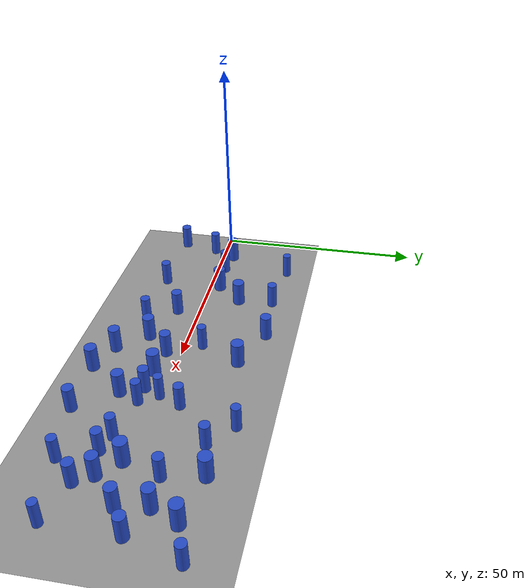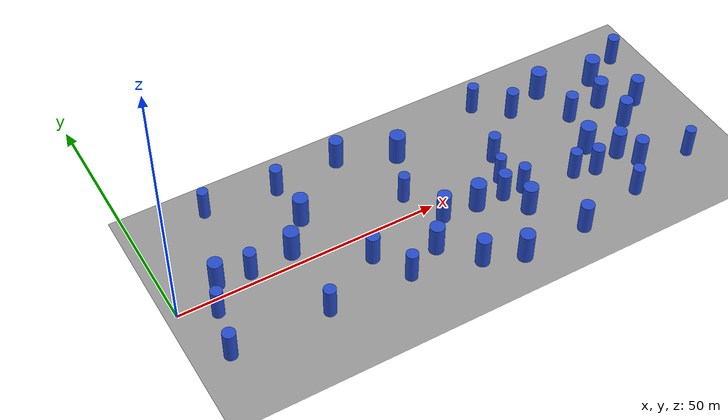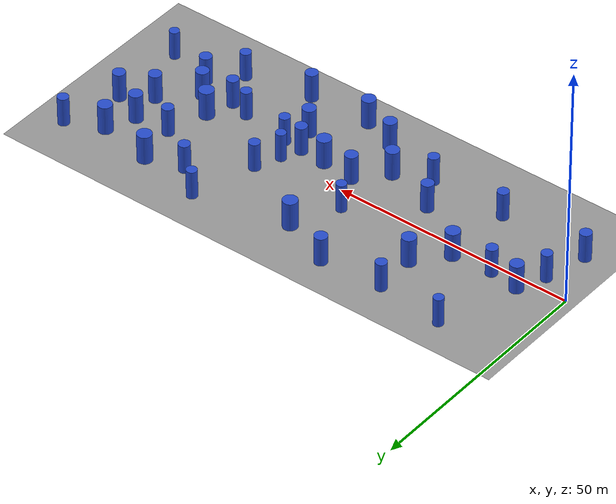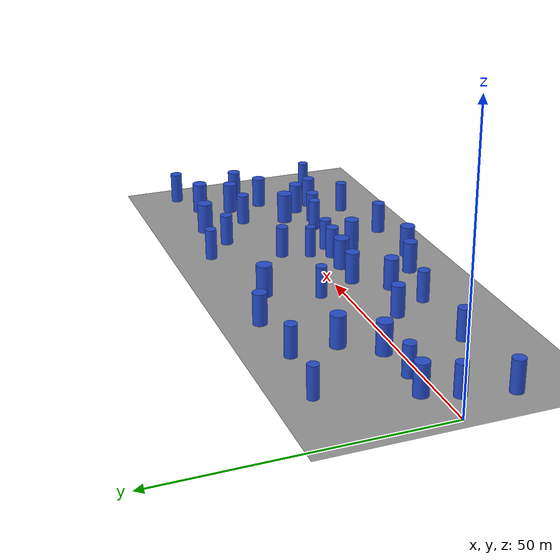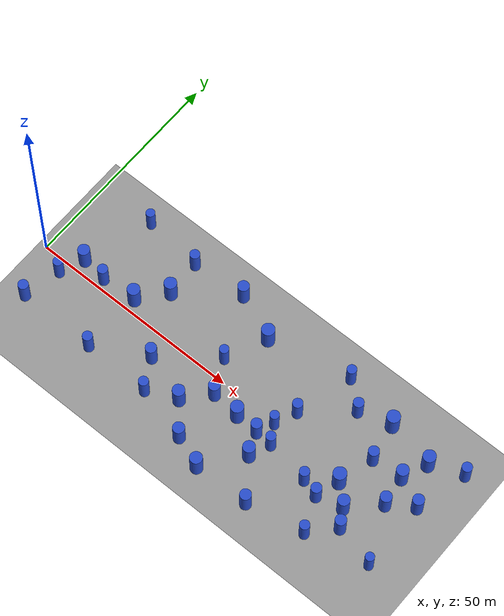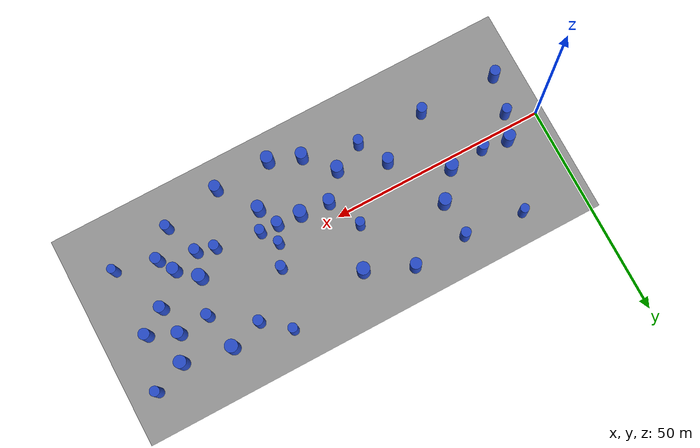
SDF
<sdf version="1.7">
 <world name="default">
  <plugin name="disable_physics" filename="libdisable_physics.so"/>
  <plugin name="gazebo_ros_state" filename="libgazebo_ros_state.so">
   <ros>
    <namespace>/plug</namespace>
    <argument>model_states:=model_states_plug</argument>
    <argument>link_states:=link_states_plug</argument>
   </ros>
   <update_rate>100.0</update_rate>
  </plugin>
  <light name="sun" type="directional">
   <pose>0 0 10 0 -0 0</pose>
   <diffuse>0.8 0.8 0.8 1</diffuse>
   <specular>0.2 0.2 0.2 1</specular>
   <attenuation>
    <range>1000</range>
    <constant>0.9</constant>
    <linear>0.01</linear>
    <quadratic>0.001</quadratic>
   </attenuation>
   <direction>-0.5 0.1 -0.9</direction>
   <spot><inner_angle>0</inner_angle><outer_angle>0</outer_angle><falloff>0</falloff></spot>
  </light>
  <gravity>0 0 -9.8</gravity>
  <magnetic_field>6e-06 2.3e-05 -4.2e-05</magnetic_field>
  <atmosphere type="adiabatic"/>
  <physics type="ode">
   <max_step_size>0.001</max_step_size>
   <real_time_factor>1</real_time_factor>
   <real_time_update_rate>1000</real_time_update_rate>
  </physics>
  <scene><ambient>0.4 0.4 0.4 1</ambient><background>0.7 0.7 0.7 1</background><shadows>1</shadows></scene>
  <audio><device>default</device></audio>
  <spherical_coordinates>
   <surface_model>EARTH_WGS84</surface_model>
   <latitude_deg>0</latitude_deg>
   <longitude_deg>0</longitude_deg>
   <elevation>0</elevation>
   <heading_deg>0</heading_deg>
  </spherical_coordinates>
  <model name="ground_plane_map">
   <static>1</static>
   <link name="link">
    <collision name="collision">
     <geometry><plane><normal>0 0 1</normal><size>110 50</size></plane></geometry>
     <surface>
      <contact><collide_without_contact>1</collide_without_contact></contact>
      <friction><ode><mu>100</mu><mu2>50</mu2></ode></friction>
     </surface>
    </collision>
    <visual name="visual">
     <cast_shadows>0</cast_shadows>
     <geometry><plane><normal>0 0 1</normal><size>110 50</size></plane></geometry>
     <material>
      <script><uri>file://media/materials/scripts/gazebo.material</uri><name>Gazebo/Grey</name></script>
     </material>
    </visual>
   </link>
   <pose>53 0 0 0 -0 0</pose>
  </model>
  <model name="0">
   <static>1</static>
   <link name="link">
    <inertial>
     <mass>2</mass>
     <inertia><ixx>6.95079</ixx><ixy>0</ixy><ixz>0</ixz><iyy>6.95079</iyy><iyz>0</iyz><izz>1.90158</izz></inertia>
    </inertial>
    <collision name="collision">
     <geometry><cylinder><length>6</length><radius>1.37898</radius></cylinder></geometry>
     <surface><contact><collide_without_contact>1</collide_without_contact></contact></surface>
    </collision>
    <visual name="visual">
     <geometry><cylinder><length>6</length><radius>1.37898</radius></cylinder></geometry>
     <material>
      <script><uri>file://media/materials/scripts/gazebo.material</uri><name>Gazebo/Blue</name></script>
     </material>
    </visual>
    <gravity>0</gravity>
   </link>
   <pose>45.2762 -8.97843 3 0 -0 0</pose>
  </model>
  <model name="1">
   <static>1</static>
   <link name="link">
    <inertial>
     <mass>2</mass>
     <inertia><ixx>6.72296</ixx><ixy>0</ixy><ixz>0</ixz><iyy>6.72296</iyy><iyz>0</iyz><izz>1.44593</izz></inertia>
    </inertial>
    <collision name="collision">
     <geometry><cylinder><length>6</length><radius>1.20247</radius></cylinder></geometry>
     <surface><contact><collide_without_contact>1</collide_without_contact></contact></surface>
    </collision>
    <visual name="visual">
     <geometry><cylinder><length>6</length><radius>1.20247</radius></cylinder></geometry>
     <material>
      <script><uri>file://media/materials/scripts/gazebo.material</uri><name>Gazebo/Blue</name></script>
     </material>
    </visual>
    <gravity>0</gravity>
   </link>
   <pose>80.6973 -7.39447 3 0 -0 0</pose>
  </model>
  <model name="2">
   <static>1</static>
   <link name="link">
    <inertial>
     <mass>2</mass>
     <inertia><ixx>6.83423</ixx><ixy>0</ixy><ixz>0</ixz><iyy>6.83423</iyy><iyz>0</iyz><izz>1.66847</izz></inertia>
    </inertial>
    <collision name="collision">
     <geometry><cylinder><length>6</length><radius>1.29169</radius></cylinder></geometry>
     <surface><contact><collide_without_contact>1</collide_without_contact></contact></surface>
    </collision>
    <visual name="visual">
     <geometry><cylinder><length>6</length><radius>1.29169</radius></cylinder></geometry>
     <material>
      <script><uri>file://media/materials/scripts/gazebo.material</uri><name>Gazebo/Blue</name></script>
     </material>
    </visual>
    <gravity>0</gravity>
   </link>
   <pose>92.757 0.175366 3 0 -0 0</pose>
  </model>
  <model name="3">
   <static>1</static>
   <link name="link">
    <inertial>
     <mass>2</mass>
     <inertia><ixx>6.94931</ixx><ixy>0</ixy><ixz>0</ixz><iyy>6.94931</iyy><iyz>0</iyz><izz>1.89861</izz></inertia>
    </inertial>
    <collision name="collision">
     <geometry><cylinder><length>6</length><radius>1.3779</radius></cylinder></geometry>
     <surface><contact><collide_without_contact>1</collide_without_contact></contact></surface>
    </collision>
    <visual name="visual">
     <geometry><cylinder><length>6</length><radius>1.3779</radius></cylinder></geometry>
     <material>
      <script><uri>file://media/materials/scripts/gazebo.material</uri><name>Gazebo/Blue</name></script>
     </material>
    </visual>
    <gravity>0</gravity>
   </link>
   <pose>64.5107 -9.29219 3 0 -0 0</pose>
  </model>
  <model name="4">
   <static>1</static>
   <link name="link">
    <inertial>
     <mass>2</mass>
     <inertia><ixx>7.11213</ixx><ixy>0</ixy><ixz>0</ixz><iyy>7.11213</iyy><iyz>0</iyz><izz>2.22425</izz></inertia>
    </inertial>
    <collision name="collision">
     <geometry><cylinder><length>6</length><radius>1.49139</radius></cylinder></geometry>
     <surface><contact><collide_without_contact>1</collide_without_contact></contact></surface>
    </collision>
    <visual name="visual">
     <geometry><cylinder><length>6</length><radius>1.49139</radius></cylinder></geometry>
     <material>
      <script><uri>file://media/materials/scripts/gazebo.material</uri><name>Gazebo/Blue</name></script>
     </material>
    </visual>
    <gravity>0</gravity>
   </link>
   <pose>83.0964 14.8871 3 0 -0 0</pose>
  </model>
  <model name="5">
   <static>1</static>
   <link name="link">
    <inertial>
     <mass>2</mass>
     <inertia><ixx>6.9315</ixx><ixy>0</ixy><ixz>0</ixz><iyy>6.9315</iyy><iyz>0</iyz><izz>1.863</izz></inertia>
    </inertial>
    <collision name="collision">
     <geometry><cylinder><length>6</length><radius>1.36492</radius></cylinder></geometry>
     <surface><contact><collide_without_contact>1</collide_without_contact></contact></surface>
    </collision>
    <visual name="visual">
     <geometry><cylinder><length>6</length><radius>1.36492</radius></cylinder></geometry>
     <material>
      <script><uri>file://media/materials/scripts/gazebo.material</uri><name>Gazebo/Blue</name></script>
     </material>
    </visual>
    <gravity>0</gravity>
   </link>
   <pose>91.7951 6.85711 3 0 -0 0</pose>
  </model>
  <model name="6">
   <static>1</static>
   <link name="link">
    <inertial>
     <mass>2</mass>
     <inertia><ixx>6.55162</ixx><ixy>0</ixy><ixz>0</ixz><iyy>6.55162</iyy><iyz>0</iyz><izz>1.10324</izz></inertia>
    </inertial>
    <collision name="collision">
     <geometry><cylinder><length>6</length><radius>1.05035</radius></cylinder></geometry>
     <surface><contact><collide_without_contact>1</collide_without_contact></contact></surface>
    </collision>
    <visual name="visual">
     <geometry><cylinder><length>6</length><radius>1.05035</radius></cylinder></geometry>
     <material>
      <script><uri>file://media/materials/scripts/gazebo.material</uri><name>Gazebo/Blue</name></script>
     </material>
    </visual>
    <gravity>0</gravity>
   </link>
   <pose>46.5555 4.20254 3 0 -0 0</pose>
  </model>
  <model name="7">
   <static>1</static>
   <link name="link">
    <inertial>
     <mass>2</mass>
     <inertia><ixx>7.10009</ixx><ixy>0</ixy><ixz>0</ixz><iyy>7.10009</iyy><iyz>0</iyz><izz>2.20019</izz></inertia>
    </inertial>
    <collision name="collision">
     <geometry><cylinder><length>6</length><radius>1.4833</radius></cylinder></geometry>
     <surface><contact><collide_without_contact>1</collide_without_contact></contact></surface>
    </collision>
    <visual name="visual">
     <geometry><cylinder><length>6</length><radius>1.4833</radius></cylinder></geometry>
     <material>
      <script><uri>file://media/materials/scripts/gazebo.material</uri><name>Gazebo/Blue</name></script>
     </material>
    </visual>
    <gravity>0</gravity>
   </link>
   <pose>50.7692 13.5287 3 0 -0 0</pose>
  </model>
  <model name="8">
   <static>1</static>
   <link name="link">
    <inertial>
     <mass>2</mass>
     <inertia><ixx>6.98352</ixx><ixy>0</ixy><ixz>0</ixz><iyy>6.98352</iyy><iyz>0</iyz><izz>1.96705</izz></inertia>
    </inertial>
    <collision name="collision">
     <geometry><cylinder><length>6</length><radius>1.40251</radius></cylinder></geometry>
     <surface><contact><collide_without_contact>1</collide_without_contact></contact></surface>
    </collision>
    <visual name="visual">
     <geometry><cylinder><length>6</length><radius>1.40251</radius></cylinder></geometry>
     <material>
      <script><uri>file://media/materials/scripts/gazebo.material</uri><name>Gazebo/Blue</name></script>
     </material>
    </visual>
    <gravity>0</gravity>
   </link>
   <pose>57.7333 -18.0752 3 0 -0 0</pose>
  </model>
  <model name="9">
   <static>1</static>
   <link name="link">
    <inertial>
     <mass>2</mass>
     <inertia><ixx>6.71929</ixx><ixy>0</ixy><ixz>0</ixz><iyy>6.71929</iyy><iyz>0</iyz><izz>1.43859</izz></inertia>
    </inertial>
    <collision name="collision">
     <geometry><cylinder><length>6</length><radius>1.19941</radius></cylinder></geometry>
     <surface><contact><collide_without_contact>1</collide_without_contact></contact></surface>
    </collision>
    <visual name="visual">
     <geometry><cylinder><length>6</length><radius>1.19941</radius></cylinder></geometry>
     <material>
      <script><uri>file://media/materials/scripts/gazebo.material</uri><name>Gazebo/Blue</name></script>
     </material>
    </visual>
    <gravity>0</gravity>
   </link>
   <pose>84.7053 6.32276 3 0 -0 0</pose>
  </model>
  <model name="10">
   <static>1</static>
   <link name="link">
    <inertial>
     <mass>2</mass>
     <inertia><ixx>6.77724</ixx><ixy>0</ixy><ixz>0</ixz><iyy>6.77724</iyy><iyz>0</iyz><izz>1.55448</izz></inertia>
    </inertial>
    <collision name="collision">
     <geometry><cylinder><length>6</length><radius>1.24679</radius></cylinder></geometry>
     <surface><contact><collide_without_contact>1</collide_without_contact></contact></surface>
    </collision>
    <visual name="visual">
     <geometry><cylinder><length>6</length><radius>1.24679</radius></cylinder></geometry>
     <material>
      <script><uri>file://media/materials/scripts/gazebo.material</uri><name>Gazebo/Blue</name></script>
     </material>
    </visual>
    <gravity>0</gravity>
   </link>
   <pose>88.8436 -9.60499 3 0 -0 0</pose>
  </model>
  <model name="11">
   <static>1</static>
   <link name="link">
    <inertial>
     <mass>2</mass>
     <inertia><ixx>7.02995</ixx><ixy>0</ixy><ixz>0</ixz><iyy>7.02995</iyy><iyz>0</iyz><izz>2.0599</izz></inertia>
    </inertial>
    <collision name="collision">
     <geometry><cylinder><length>6</length><radius>1.43524</radius></cylinder></geometry>
     <surface><contact><collide_without_contact>1</collide_without_contact></contact></surface>
    </collision>
    <visual name="visual">
     <geometry><cylinder><length>6</length><radius>1.43524</radius></cylinder></geometry>
     <material>
      <script><uri>file://media/materials/scripts/gazebo.material</uri><name>Gazebo/Blue</name></script>
     </material>
    </visual>
    <gravity>0</gravity>
   </link>
   <pose>22.9935 2.50664 3 0 -0 0</pose>
  </model>
  <model name="12">
   <static>1</static>
   <link name="link">
    <inertial>
     <mass>2</mass>
     <inertia><ixx>7.10079</ixx><ixy>0</ixy><ixz>0</ixz><iyy>7.10079</iyy><iyz>0</iyz><izz>2.20157</izz></inertia>
    </inertial>
    <collision name="collision">
     <geometry><cylinder><length>6</length><radius>1.48377</radius></cylinder></geometry>
     <surface><contact><collide_without_contact>1</collide_without_contact></contact></surface>
    </collision>
    <visual name="visual">
     <geometry><cylinder><length>6</length><radius>1.48377</radius></cylinder></geometry>
     <material>
      <script><uri>file://media/materials/scripts/gazebo.material</uri><name>Gazebo/Blue</name></script>
     </material>
    </visual>
    <gravity>0</gravity>
   </link>
   <pose>82.4183 -1.92681 3 0 -0 0</pose>
  </model>
  <model name="13">
   <static>1</static>
   <link name="link">
    <inertial>
     <mass>2</mass>
     <inertia><ixx>6.67283</ixx><ixy>0</ixy><ixz>0</ixz><iyy>6.67283</iyy><iyz>0</iyz><izz>1.34566</izz></inertia>
    </inertial>
    <collision name="collision">
     <geometry><cylinder><length>6</length><radius>1.16003</radius></cylinder></geometry>
     <surface><contact><collide_without_contact>1</collide_without_contact></contact></surface>
    </collision>
    <visual name="visual">
     <geometry><cylinder><length>6</length><radius>1.16003</radius></cylinder></geometry>
     <material>
      <script><uri>file://media/materials/scripts/gazebo.material</uri><name>Gazebo/Blue</name></script>
     </material>
    </visual>
    <gravity>0</gravity>
   </link>
   <pose>14.8128 1.93175 3 0 -0 0</pose>
  </model>
  <model name="14">
   <static>1</static>
   <link name="link">
    <inertial>
     <mass>2</mass>
     <inertia><ixx>6.81118</ixx><ixy>0</ixy><ixz>0</ixz><iyy>6.81118</iyy><iyz>0</iyz><izz>1.62236</izz></inertia>
    </inertial>
    <collision name="collision">
     <geometry><cylinder><length>6</length><radius>1.27372</radius></cylinder></geometry>
     <surface><contact><collide_without_contact>1</collide_without_contact></contact></surface>
    </collision>
    <visual name="visual">
     <geometry><cylinder><length>6</length><radius>1.27372</radius></cylinder></geometry>
     <material>
      <script><uri>file://media/materials/scripts/gazebo.material</uri><name>Gazebo/Blue</name></script>
     </material>
    </visual>
    <gravity>0</gravity>
   </link>
   <pose>98.2023 3.86457 3 0 -0 0</pose>
  </model>
  <model name="15">
   <static>1</static>
   <link name="link">
    <inertial>
     <mass>2</mass>
     <inertia><ixx>6.74725</ixx><ixy>0</ixy><ixz>0</ixz><iyy>6.74725</iyy><iyz>0</iyz><izz>1.49449</izz></inertia>
    </inertial>
    <collision name="collision">
     <geometry><cylinder><length>6</length><radius>1.22249</radius></cylinder></geometry>
     <surface><contact><collide_without_contact>1</collide_without_contact></contact></surface>
    </collision>
    <visual name="visual">
     <geometry><cylinder><length>6</length><radius>1.22249</radius></cylinder></geometry>
     <material>
      <script><uri>file://media/materials/scripts/gazebo.material</uri><name>Gazebo/Blue</name></script>
     </material>
    </visual>
    <gravity>0</gravity>
   </link>
   <pose>62.3933 -4.32254 3 0 -0 0</pose>
  </model>
  <model name="16">
   <static>1</static>
   <link name="link">
    <inertial>
     <mass>2</mass>
     <inertia><ixx>6.6557</ixx><ixy>0</ixy><ixz>0</ixz><iyy>6.6557</iyy><iyz>0</iyz><izz>1.3114</izz></inertia>
    </inertial>
    <collision name="collision">
     <geometry><cylinder><length>6</length><radius>1.14516</radius></cylinder></geometry>
     <surface><contact><collide_without_contact>1</collide_without_contact></contact></surface>
    </collision>
    <visual name="visual">
     <geometry><cylinder><length>6</length><radius>1.14516</radius></cylinder></geometry>
     <material>
      <script><uri>file://media/materials/scripts/gazebo.material</uri><name>Gazebo/Blue</name></script>
     </material>
    </visual>
    <gravity>0</gravity>
   </link>
   <pose>22.6505 -11.8133 3 0 -0 0</pose>
  </model>
  <model name="17">
   <static>1</static>
   <link name="link">
    <inertial>
     <mass>2</mass>
     <inertia><ixx>6.88223</ixx><ixy>0</ixy><ixz>0</ixz><iyy>6.88223</iyy><iyz>0</iyz><izz>1.76446</izz></inertia>
    </inertial>
    <collision name="collision">
     <geometry><cylinder><length>6</length><radius>1.32833</radius></cylinder></geometry>
     <surface><contact><collide_without_contact>1</collide_without_contact></contact></surface>
    </collision>
    <visual name="visual">
     <geometry><cylinder><length>6</length><radius>1.32833</radius></cylinder></geometry>
     <material>
      <script><uri>file://media/materials/scripts/gazebo.material</uri><name>Gazebo/Blue</name></script>
     </material>
    </visual>
    <gravity>0</gravity>
   </link>
   <pose>50.7154 -15.3173 3 0 -0 0</pose>
  </model>
  <model name="18">
   <static>1</static>
   <link name="link">
    <inertial>
     <mass>2</mass>
     <inertia><ixx>7.03448</ixx><ixy>0</ixy><ixz>0</ixz><iyy>7.03448</iyy><iyz>0</iyz><izz>2.06895</izz></inertia>
    </inertial>
    <collision name="collision">
     <geometry><cylinder><length>6</length><radius>1.43839</radius></cylinder></geometry>
     <surface><contact><collide_without_contact>1</collide_without_contact></contact></surface>
    </collision>
    <visual name="visual">
     <geometry><cylinder><length>6</length><radius>1.43839</radius></cylinder></geometry>
     <material>
      <script><uri>file://media/materials/scripts/gazebo.material</uri><name>Gazebo/Blue</name></script>
     </material>
    </visual>
    <gravity>0</gravity>
   </link>
   <pose>94.1201 12.7132 3 0 -0 0</pose>
  </model>
  <model name="19">
   <static>1</static>
   <link name="link">
    <inertial>
     <mass>2</mass>
     <inertia><ixx>7.06805</ixx><ixy>0</ixy><ixz>0</ixz><iyy>7.06805</iyy><iyz>0</iyz><izz>2.1361</izz></inertia>
    </inertial>
    <collision name="collision">
     <geometry><cylinder><length>6</length><radius>1.46154</radius></cylinder></geometry>
     <surface><contact><collide_without_contact>1</collide_without_contact></contact></surface>
    </collision>
    <visual name="visual">
     <geometry><cylinder><length>6</length><radius>1.46154</radius></cylinder></geometry>
     <material>
      <script><uri>file://media/materials/scripts/gazebo.material</uri><name>Gazebo/Blue</name></script>
     </material>
    </visual>
    <gravity>0</gravity>
   </link>
   <pose>56.9413 -4.03041 3 0 -0 0</pose>
  </model>
  <model name="20">
   <static>1</static>
   <link name="link">
    <inertial>
     <mass>2</mass>
     <inertia><ixx>6.64731</ixx><ixy>0</ixy><ixz>0</ixz><iyy>6.64731</iyy><iyz>0</iyz><izz>1.29463</izz></inertia>
    </inertial>
    <collision name="collision">
     <geometry><cylinder><length>6</length><radius>1.13782</radius></cylinder></geometry>
     <surface><contact><collide_without_contact>1</collide_without_contact></contact></surface>
    </collision>
    <visual name="visual">
     <geometry><cylinder><length>6</length><radius>1.13782</radius></cylinder></geometry>
     <material>
      <script><uri>file://media/materials/scripts/gazebo.material</uri><name>Gazebo/Blue</name></script>
     </material>
    </visual>
    <gravity>0</gravity>
   </link>
   <pose>101.496 15.7288 3 0 -0 0</pose>
  </model>
  <model name="21">
   <static>1</static>
   <link name="link">
    <inertial>
     <mass>2</mass>
     <inertia><ixx>6.54203</ixx><ixy>0</ixy><ixz>0</ixz><iyy>6.54203</iyy><iyz>0</iyz><izz>1.08407</izz></inertia>
    </inertial>
    <collision name="collision">
     <geometry><cylinder><length>6</length><radius>1.04119</radius></cylinder></geometry>
     <surface><contact><collide_without_contact>1</collide_without_contact></contact></surface>
    </collision>
    <visual name="visual">
     <geometry><cylinder><length>6</length><radius>1.04119</radius></cylinder></geometry>
     <material>
      <script><uri>file://media/materials/scripts/gazebo.material</uri><name>Gazebo/Blue</name></script>
     </material>
    </visual>
    <gravity>0</gravity>
   </link>
   <pose>64.0435 -0.514004 3 0 -0 0</pose>
  </model>
  <model name="22">
   <static>1</static>
   <link name="link">
    <inertial>
     <mass>2</mass>
     <inertia><ixx>7.01181</ixx><ixy>0</ixy><ixz>0</ixz><iyy>7.01181</iyy><iyz>0</iyz><izz>2.02362</izz></inertia>
    </inertial>
    <collision name="collision">
     <geometry><cylinder><length>6</length><radius>1.42254</radius></cylinder></geometry>
     <surface><contact><collide_without_contact>1</collide_without_contact></contact></surface>
    </collision>
    <visual name="visual">
     <geometry><cylinder><length>6</length><radius>1.42254</radius></cylinder></geometry>
     <material>
      <script><uri>file://media/materials/scripts/gazebo.material</uri><name>Gazebo/Blue</name></script>
     </material>
    </visual>
    <gravity>0</gravity>
   </link>
   <pose>28.0346 8.60096 3 0 -0 0</pose>
  </model>
  <model name="23">
   <static>1</static>
   <link name="link">
    <inertial>
     <mass>2</mass>
     <inertia><ixx>6.61631</ixx><ixy>0</ixy><ixz>0</ixz><iyy>6.61631</iyy><iyz>0</iyz><izz>1.23261</izz></inertia>
    </inertial>
    <collision name="collision">
     <geometry><cylinder><length>6</length><radius>1.11023</radius></cylinder></geometry>
     <surface><contact><collide_without_contact>1</collide_without_contact></contact></surface>
    </collision>
    <visual name="visual">
     <geometry><cylinder><length>6</length><radius>1.11023</radius></cylinder></geometry>
     <material>
      <script><uri>file://media/materials/scripts/gazebo.material</uri><name>Gazebo/Blue</name></script>
     </material>
    </visual>
    <gravity>0</gravity>
   </link>
   <pose>83.8898 -15.0889 3 0 -0 0</pose>
  </model>
  <model name="24">
   <static>1</static>
   <link name="link">
    <inertial>
     <mass>2</mass>
     <inertia><ixx>6.90968</ixx><ixy>0</ixy><ixz>0</ixz><iyy>6.90968</iyy><iyz>0</iyz><izz>1.81936</izz></inertia>
    </inertial>
    <collision name="collision">
     <geometry><cylinder><length>6</length><radius>1.34884</radius></cylinder></geometry>
     <surface><contact><collide_without_contact>1</collide_without_contact></contact></surface>
    </collision>
    <visual name="visual">
     <geometry><cylinder><length>6</length><radius>1.34884</radius></cylinder></geometry>
     <material>
      <script><uri>file://media/materials/scripts/gazebo.material</uri><name>Gazebo/Blue</name></script>
     </material>
    </visual>
    <gravity>0</gravity>
   </link>
   <pose>8.75022 2.75537 3 0 -0 0</pose>
  </model>
  <model name="25">
   <static>1</static>
   <link name="link">
    <inertial>
     <mass>2</mass>
     <inertia><ixx>6.80277</ixx><ixy>0</ixy><ixz>0</ixz><iyy>6.80277</iyy><iyz>0</iyz><izz>1.60554</izz></inertia>
    </inertial>
    <collision name="collision">
     <geometry><cylinder><length>6</length><radius>1.2671</radius></cylinder></geometry>
     <surface><contact><collide_without_contact>1</collide_without_contact></contact></surface>
    </collision>
    <visual name="visual">
     <geometry><cylinder><length>6</length><radius>1.2671</radius></cylinder></geometry>
     <material>
      <script><uri>file://media/materials/scripts/gazebo.material</uri><name>Gazebo/Blue</name></script>
     </material>
    </visual>
    <gravity>0</gravity>
   </link>
   <pose>70.6013 -17.7327 3 0 -0 0</pose>
  </model>
  <model name="26">
   <static>1</static>
   <link name="link">
    <inertial>
     <mass>2</mass>
     <inertia><ixx>6.84912</ixx><ixy>0</ixy><ixz>0</ixz><iyy>6.84912</iyy><iyz>0</iyz><izz>1.69825</izz></inertia>
    </inertial>
    <collision name="collision">
     <geometry><cylinder><length>6</length><radius>1.30317</radius></cylinder></geometry>
     <surface><contact><collide_without_contact>1</collide_without_contact></contact></surface>
    </collision>
    <visual name="visual">
     <geometry><cylinder><length>6</length><radius>1.30317</radius></cylinder></geometry>
     <material>
      <script><uri>file://media/materials/scripts/gazebo.material</uri><name>Gazebo/Blue</name></script>
     </material>
    </visual>
    <gravity>0</gravity>
   </link>
   <pose>40.3525 17.9683 3 0 -0 0</pose>
  </model>
  <model name="27">
   <static>1</static>
   <link name="link">
    <inertial>
     <mass>2</mass>
     <inertia><ixx>6.51088</ixx><ixy>0</ixy><ixz>0</ixz><iyy>6.51088</iyy><iyz>0</iyz><izz>1.02175</izz></inertia>
    </inertial>
    <collision name="collision">
     <geometry><cylinder><length>6</length><radius>1.01082</radius></cylinder></geometry>
     <surface><contact><collide_without_contact>1</collide_without_contact></contact></surface>
    </collision>
    <visual name="visual">
     <geometry><cylinder><length>6</length><radius>1.01082</radius></cylinder></geometry>
     <material>
      <script><uri>file://media/materials/scripts/gazebo.material</uri><name>Gazebo/Blue</name></script>
     </material>
    </visual>
    <gravity>0</gravity>
   </link>
   <pose>98.1711 -11.9642 3 0 -0 0</pose>
  </model>
  <model name="28">
   <static>1</static>
   <link name="link">
    <inertial>
     <mass>2</mass>
     <inertia><ixx>6.61083</ixx><ixy>0</ixy><ixz>0</ixz><iyy>6.61083</iyy><iyz>0</iyz><izz>1.22166</izz></inertia>
    </inertial>
    <collision name="collision">
     <geometry><cylinder><length>6</length><radius>1.10529</radius></cylinder></geometry>
     <surface><contact><collide_without_contact>1</collide_without_contact></contact></surface>
    </collision>
    <visual name="visual">
     <geometry><cylinder><length>6</length><radius>1.10529</radius></cylinder></geometry>
     <material>
      <script><uri>file://media/materials/scripts/gazebo.material</uri><name>Gazebo/Blue</name></script>
     </material>
    </visual>
    <gravity>0</gravity>
   </link>
   <pose>6.33318 -2.81082 3 0 -0 0</pose>
  </model>
  <model name="29">
   <static>1</static>
   <link name="link">
    <inertial>
     <mass>2</mass>
     <inertia><ixx>6.6384</ixx><ixy>0</ixy><ixz>0</ixz><iyy>6.6384</iyy><iyz>0</iyz><izz>1.27681</izz></inertia>
    </inertial>
    <collision name="collision">
     <geometry><cylinder><length>6</length><radius>1.12996</radius></cylinder></geometry>
     <surface><contact><collide_without_contact>1</collide_without_contact></contact></surface>
    </collision>
    <visual name="visual">
     <geometry><cylinder><length>6</length><radius>1.12996</radius></cylinder></geometry>
     <material>
      <script><uri>file://media/materials/scripts/gazebo.material</uri><name>Gazebo/Blue</name></script>
     </material>
    </visual>
    <gravity>0</gravity>
   </link>
   <pose>38.3677 -12.0648 3 0 -0 0</pose>
  </model>
  <model name="30">
   <static>1</static>
   <link name="link">
    <inertial>
     <mass>2</mass>
     <inertia><ixx>6.51988</ixx><ixy>0</ixy><ixz>0</ixz><iyy>6.51988</iyy><iyz>0</iyz><izz>1.03977</izz></inertia>
    </inertial>
    <collision name="collision">
     <geometry><cylinder><length>6</length><radius>1.01969</radius></cylinder></geometry>
     <surface><contact><collide_without_contact>1</collide_without_contact></contact></surface>
    </collision>
    <visual name="visual">
     <geometry><cylinder><length>6</length><radius>1.01969</radius></cylinder></geometry>
     <material>
      <script><uri>file://media/materials/scripts/gazebo.material</uri><name>Gazebo/Blue</name></script>
     </material>
    </visual>
    <gravity>0</gravity>
   </link>
   <pose>13.906 18.5337 3 0 -0 0</pose>
  </model>
  <model name="31">
   <static>1</static>
   <link name="link">
    <inertial>
     <mass>2</mass>
     <inertia><ixx>6.69535</ixx><ixy>0</ixy><ixz>0</ixz><iyy>6.69535</iyy><iyz>0</iyz><izz>1.3907</izz></inertia>
    </inertial>
    <collision name="collision">
     <geometry><cylinder><length>6</length><radius>1.17928</radius></cylinder></geometry>
     <surface><contact><collide_without_contact>1</collide_without_contact></contact></surface>
    </collision>
    <visual name="visual">
     <geometry><cylinder><length>6</length><radius>1.17928</radius></cylinder></geometry>
     <material>
      <script><uri>file://media/materials/scripts/gazebo.material</uri><name>Gazebo/Blue</name></script>
     </material>
    </visual>
    <gravity>0</gravity>
   </link>
   <pose>75.6136 12.7351 3 0 -0 0</pose>
  </model>
  <model name="32">
   <static>1</static>
   <link name="link">
    <inertial>
     <mass>2</mass>
     <inertia><ixx>6.5883</ixx><ixy>0</ixy><ixz>0</ixz><iyy>6.5883</iyy><iyz>0</iyz><izz>1.1766</izz></inertia>
    </inertial>
    <collision name="collision">
     <geometry><cylinder><length>6</length><radius>1.08471</radius></cylinder></geometry>
     <surface><contact><collide_without_contact>1</collide_without_contact></contact></surface>
    </collision>
    <visual name="visual">
     <geometry><cylinder><length>6</length><radius>1.08471</radius></cylinder></geometry>
     <material>
      <script><uri>file://media/materials/scripts/gazebo.material</uri><name>Gazebo/Blue</name></script>
     </material>
    </visual>
    <gravity>0</gravity>
   </link>
   <pose>69.8895 17.6498 3 0 -0 0</pose>
  </model>
  <model name="33">
   <static>1</static>
   <link name="link">
    <inertial>
     <mass>2</mass>
     <inertia><ixx>6.89526</ixx><ixy>0</ixy><ixz>0</ixz><iyy>6.89526</iyy><iyz>0</iyz><izz>1.79051</izz></inertia>
    </inertial>
    <collision name="collision">
     <geometry><cylinder><length>6</length><radius>1.3381</radius></cylinder></geometry>
     <surface><contact><collide_without_contact>1</collide_without_contact></contact></surface>
    </collision>
    <visual name="visual">
     <geometry><cylinder><length>6</length><radius>1.3381</radius></cylinder></geometry>
     <material>
      <script><uri>file://media/materials/scripts/gazebo.material</uri><name>Gazebo/Blue</name></script>
     </material>
    </visual>
    <gravity>0</gravity>
   </link>
   <pose>86.618 -5.88549 3 0 -0 0</pose>
  </model>
  <model name="34">
   <static>1</static>
   <link name="link">
    <inertial>
     <mass>2</mass>
     <inertia><ixx>6.84292</ixx><ixy>0</ixy><ixz>0</ixz><iyy>6.84292</iyy><iyz>0</iyz><izz>1.68583</izz></inertia>
    </inertial>
    <collision name="collision">
     <geometry><cylinder><length>6</length><radius>1.2984</radius></cylinder></geometry>
     <surface><contact><collide_without_contact>1</collide_without_contact></contact></surface>
    </collision>
    <visual name="visual">
     <geometry><cylinder><length>6</length><radius>1.2984</radius></cylinder></geometry>
     <material>
      <script><uri>file://media/materials/scripts/gazebo.material</uri><name>Gazebo/Blue</name></script>
     </material>
    </visual>
    <gravity>0</gravity>
   </link>
   <pose>50.2362 -3.36983 3 0 -0 0</pose>
  </model>
  <model name="35">
   <static>1</static>
   <link name="link">
    <inertial>
     <mass>2</mass>
     <inertia><ixx>6.78663</ixx><ixy>0</ixy><ixz>0</ixz><iyy>6.78663</iyy><iyz>0</iyz><izz>1.57327</izz></inertia>
    </inertial>
    <collision name="collision">
     <geometry><cylinder><length>6</length><radius>1.2543</radius></cylinder></geometry>
     <surface><contact><collide_without_contact>1</collide_without_contact></contact></surface>
    </collision>
    <visual name="visual">
     <geometry><cylinder><length>6</length><radius>1.2543</radius></cylinder></geometry>
     <material>
      <script><uri>file://media/materials/scripts/gazebo.material</uri><name>Gazebo/Blue</name></script>
     </material>
    </visual>
    <gravity>0</gravity>
   </link>
   <pose>34.6176 -5.35558 3 0 -0 0</pose>
  </model>
  <model name="36">
   <static>1</static>
   <link name="link">
    <inertial>
     <mass>2</mass>
     <inertia><ixx>6.63334</ixx><ixy>0</ixy><ixz>0</ixz><iyy>6.63334</iyy><iyz>0</iyz><izz>1.26667</izz></inertia>
    </inertial>
    <collision name="collision">
     <geometry><cylinder><length>6</length><radius>1.12547</radius></cylinder></geometry>
     <surface><contact><collide_without_contact>1</collide_without_contact></contact></surface>
    </collision>
    <visual name="visual">
     <geometry><cylinder><length>6</length><radius>1.12547</radius></cylinder></geometry>
     <material>
      <script><uri>file://media/materials/scripts/gazebo.material</uri><name>Gazebo/Blue</name></script>
     </material>
    </visual>
    <gravity>0</gravity>
   </link>
   <pose>76.6137 -6.194 3 0 -0 0</pose>
  </model>
  <model name="37">
   <static>1</static>
   <link name="link">
    <inertial>
     <mass>2</mass>
     <inertia><ixx>6.6503</ixx><ixy>0</ixy><ixz>0</ixz><iyy>6.6503</iyy><iyz>0</iyz><izz>1.30061</izz></inertia>
    </inertial>
    <collision name="collision">
     <geometry><cylinder><length>6</length><radius>1.14044</radius></cylinder></geometry>
     <surface><contact><collide_without_contact>1</collide_without_contact></contact></surface>
    </collision>
    <visual name="visual">
     <geometry><cylinder><length>6</length><radius>1.14044</radius></cylinder></geometry>
     <material>
      <script><uri>file://media/materials/scripts/gazebo.material</uri><name>Gazebo/Blue</name></script>
     </material>
    </visual>
    <gravity>0</gravity>
   </link>
   <pose>27.6058 17.0916 3 0 -0 0</pose>
  </model>
  <model name="38">
   <static>1</static>
   <link name="link">
    <inertial>
     <mass>2</mass>
     <inertia><ixx>6.6543</ixx><ixy>0</ixy><ixz>0</ixz><iyy>6.6543</iyy><iyz>0</iyz><izz>1.3086</izz></inertia>
    </inertial>
    <collision name="collision">
     <geometry><cylinder><length>6</length><radius>1.14394</radius></cylinder></geometry>
     <surface><contact><collide_without_contact>1</collide_without_contact></contact></surface>
    </collision>
    <visual name="visual">
     <geometry><cylinder><length>6</length><radius>1.14394</radius></cylinder></geometry>
     <material>
      <script><uri>file://media/materials/scripts/gazebo.material</uri><name>Gazebo/Blue</name></script>
     </material>
    </visual>
    <gravity>0</gravity>
   </link>
   <pose>66.0688 4.56607 3 0 -0 0</pose>
  </model>
  <model name="39">
   <static>1</static>
   <link name="link">
    <inertial>
     <mass>2</mass>
     <inertia><ixx>6.71283</ixx><ixy>0</ixy><ixz>0</ixz><iyy>6.71283</iyy><iyz>0</iyz><izz>1.42566</izz></inertia>
    </inertial>
    <collision name="collision">
     <geometry><cylinder><length>6</length><radius>1.19401</radius></cylinder></geometry>
     <surface><contact><collide_without_contact>1</collide_without_contact></contact></surface>
    </collision>
    <visual name="visual">
     <geometry><cylinder><length>6</length><radius>1.19401</radius></cylinder></geometry>
     <material>
      <script><uri>file://media/materials/scripts/gazebo.material</uri><name>Gazebo/Blue</name></script>
     </material>
    </visual>
    <gravity>0</gravity>
   </link>
   <pose>4.34279 -11.5728 3 0 -0 0</pose>
  </model>
  <model name="40">
   <static>1</static>
   <link name="link">
    <inertial>
     <mass>2</mass>
     <inertia><ixx>6.62687</ixx><ixy>0</ixy><ixz>0</ixz><iyy>6.62687</iyy><iyz>0</iyz><izz>1.25375</izz></inertia>
    </inertial>
    <collision name="collision">
     <geometry><cylinder><length>6</length><radius>1.11971</radius></cylinder></geometry>
     <surface><contact><collide_without_contact>1</collide_without_contact></contact></surface>
    </collision>
    <visual name="visual">
     <geometry><cylinder><length>6</length><radius>1.11971</radius></cylinder></geometry>
     <material>
      <script><uri>file://media/materials/scripts/gazebo.material</uri><name>Gazebo/Blue</name></script>
     </material>
    </visual>
    <gravity>0</gravity>
   </link>
   <pose>66.4322 -4.58232 3 0 -0 0</pose>
  </model>
 </world>
</sdf>
